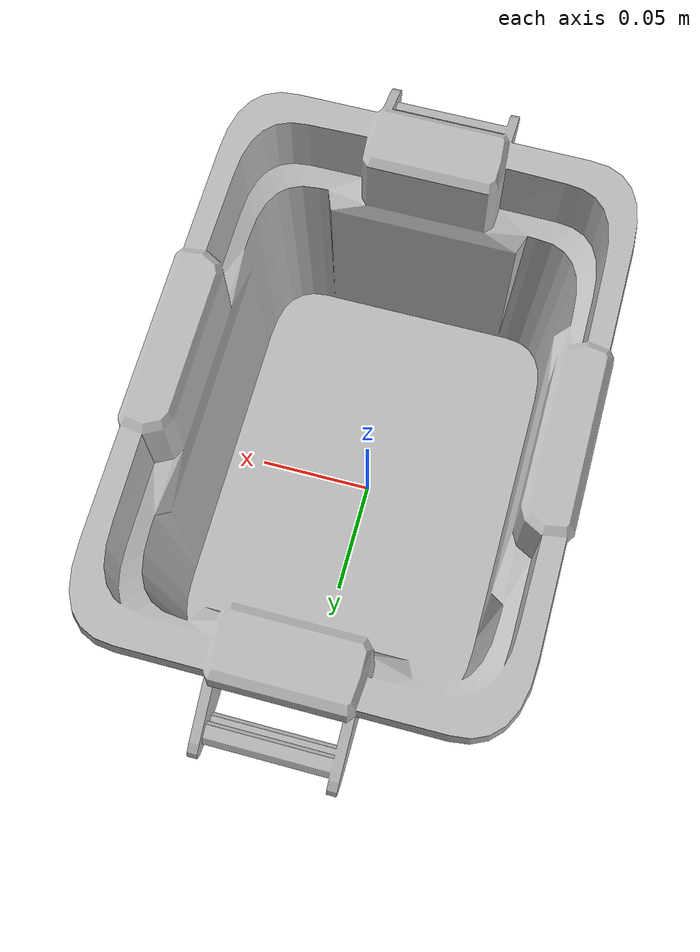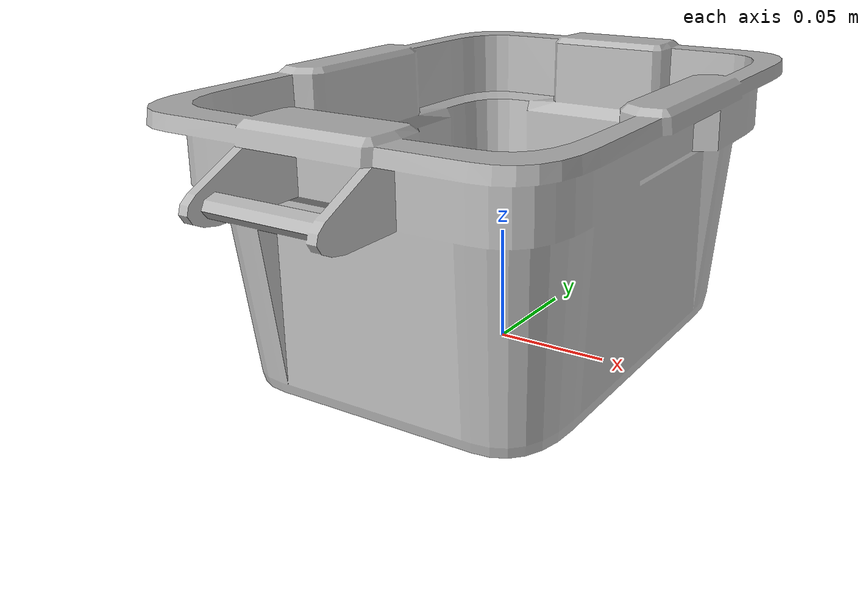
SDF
<?xml version="1.0" ?>
<sdf version="1.11">
  <model name="cell_recycling_bin">
    <static>true</static>
    <link name="bin_link">
      <collision name='collision'>
        <geometry>
          <mesh>
            <uri>model://bins/meshes/green_bin.dae</uri>
            <scale> 0.25 0.35 0.25 </scale>
          </mesh>
        </geometry>
      </collision>

      <visual name="visual">
        <geometry>
          <mesh>
            <uri>model://bins/meshes/green_bin.dae</uri>
            <scale> 0.25 0.35 0.25 </scale>
          </mesh>
        </geometry>
       </visual>

      <sensor name='collision_detector' type='contact'>
        <update_rate>30</update_rate>
          <contact>
            <collision>collision</collision>
          </contact>
      </sensor>

    </link>

    <plugin
      filename="libEntityDisposalPlugin.so"
      name="ariac_plugins::EntityDisposalPlugin">
      <contact_link>bin_link</contact_link>
    </plugin>

    <plugin
      filename="libTFPublisherPlugin.so"
      name="ariac_plugins::TFPublisherPlugin">
      <base_link>bin_link</base_link>
      <static>true</static>
    </plugin>

  </model>
</sdf>
